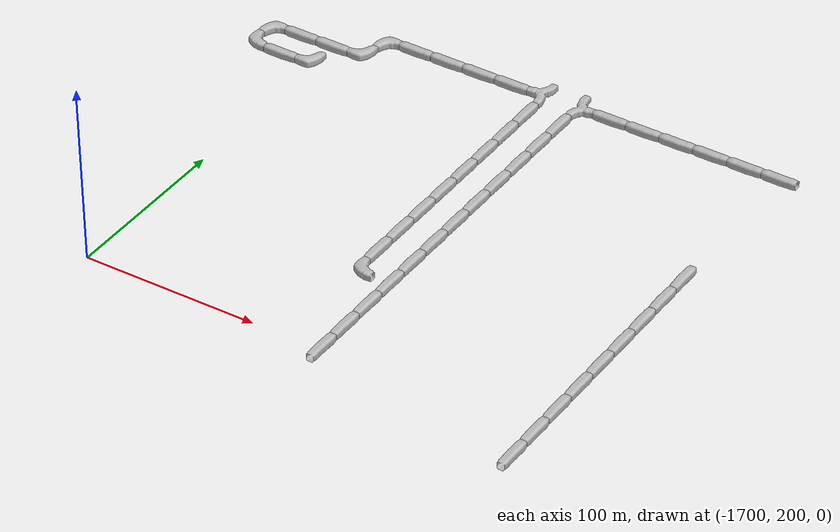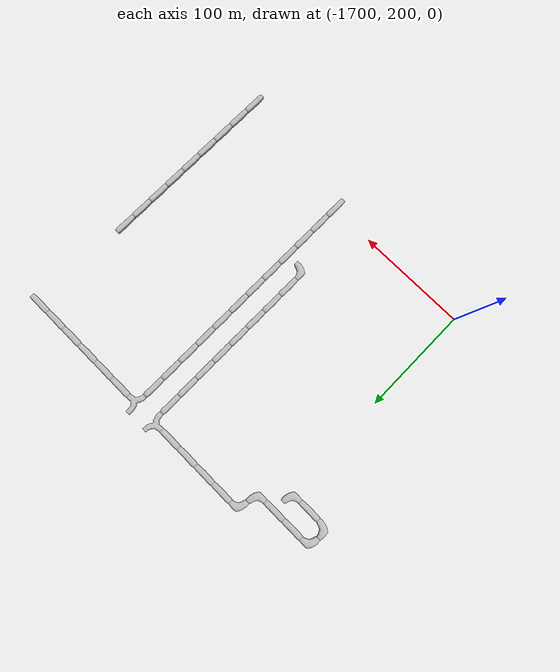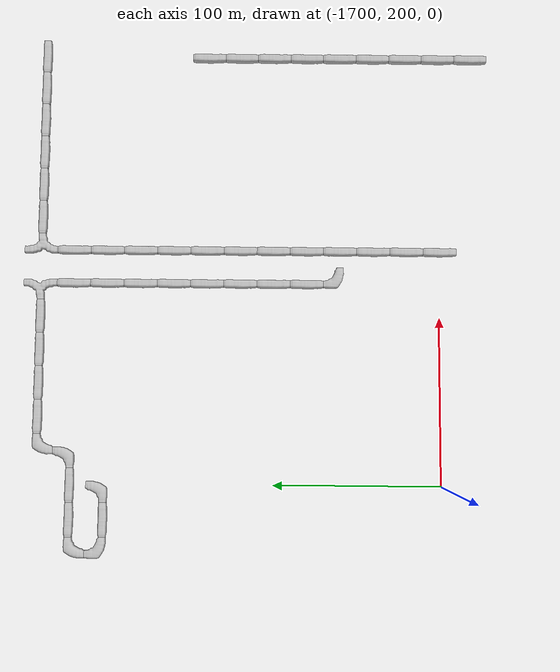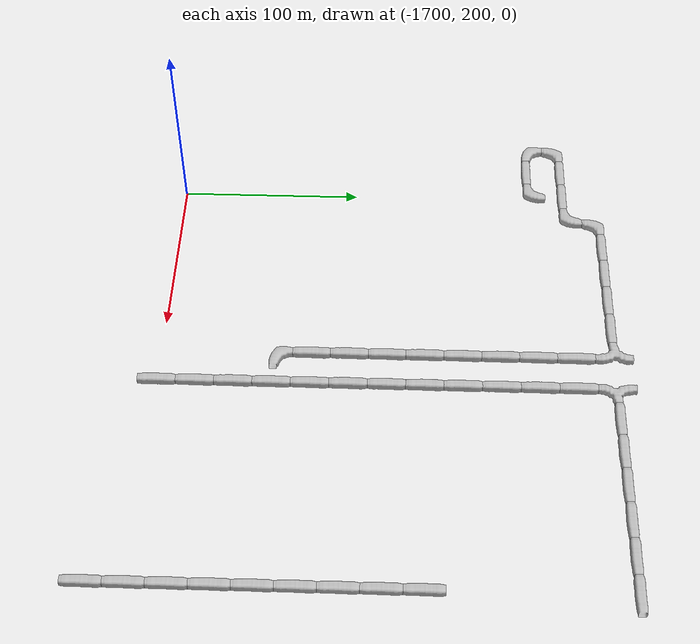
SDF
<sdf version="1.6">
 <world name="cave_16000_2">
  <include>
   <static>true</static>
   <name>cave_-72_9</name>
   <pose>-1440 180 0 0 0 0.0</pose>
   <uri>model://cave_straight_20m</uri>
  </include>
  <include>
   <static>true</static>
   <name>cave_-72_10</name>
   <pose>-1440 200 0 0 0 0.0</pose>
   <uri>model://cave_straight_20m</uri>
  </include>
  <include>
   <static>true</static>
   <name>cave_-72_11</name>
   <pose>-1440 220 0 0 0 0.0</pose>
   <uri>model://cave_straight_20m</uri>
  </include>
  <include>
   <static>true</static>
   <name>cave_-72_12</name>
   <pose>-1440 240 0 0 0 0.0</pose>
   <uri>model://cave_straight_20m</uri>
  </include>
  <include>
   <static>true</static>
   <name>cave_-72_13</name>
   <pose>-1440 260 0 0 0 0.0</pose>
   <uri>model://cave_straight_20m</uri>
  </include>
  <include>
   <static>true</static>
   <name>cave_-72_14</name>
   <pose>-1440 280 0 0 0 0.0</pose>
   <uri>model://cave_straight_20m</uri>
  </include>
  <include>
   <static>true</static>
   <name>cave_-72_15</name>
   <pose>-1440 300 0 0 0 0.0</pose>
   <uri>model://cave_straight_20m</uri>
  </include>
  <include>
   <static>true</static>
   <name>cave_-72_16</name>
   <pose>-1440 320 0 0 0 0.0</pose>
   <uri>model://cave_straight_20m</uri>
  </include>
  <include>
   <static>true</static>
   <name>cave_-72_17</name>
   <pose>-1440 340 0 0 0 0.0</pose>
   <uri>model://cave_straight_20m</uri>
  </include>
  <include>
   <static>true</static>
   <name>cave_-72_22</name>
   <pose>-1440 440 0 0 0 1.5707963267948966</pose>
   <uri>model://cave_straight_20m</uri>
  </include>
  <include>
   <static>true</static>
   <name>cave_-73_22</name>
   <pose>-1460 440 0 0 0 1.5707963267948966</pose>
   <uri>model://cave_straight_20m</uri>
  </include>
  <include>
   <static>true</static>
   <name>cave_-74_22</name>
   <pose>-1480 440 0 0 0 1.5707963267948966</pose>
   <uri>model://cave_straight_20m</uri>
  </include>
  <include>
   <static>true</static>
   <name>cave_-75_22</name>
   <pose>-1500 440 0 0 0 1.5707963267948966</pose>
   <uri>model://cave_straight_20m</uri>
  </include>
  <include>
   <static>true</static>
   <name>cave_-76_22</name>
   <pose>-1520 440 0 0 0 1.5707963267948966</pose>
   <uri>model://cave_straight_20m</uri>
  </include>
  <include>
   <static>true</static>
   <name>cave_-77_22</name>
   <pose>-1540 440 0 0 0 1.5707963267948966</pose>
   <uri>model://cave_straight_20m</uri>
  </include>
  <include>
   <static>true</static>
   <name>cave_-78_22</name>
   <pose>-1560 440 0 0 0 -1.5707963267948966</pose>
   <uri>model://cave_3way_20m</uri>
  </include>
  <include>
   <static>true</static>
   <name>cave_-78_21</name>
   <pose>-1560 420 0 0 0 0.0</pose>
   <uri>model://cave_straight_20m</uri>
  </include>
  <include>
   <static>true</static>
   <name>cave_-78_20</name>
   <pose>-1560 400 0 0 0 0.0</pose>
   <uri>model://cave_straight_20m</uri>
  </include>
  <include>
   <static>true</static>
   <name>cave_-78_19</name>
   <pose>-1560 380 0 0 0 0.0</pose>
   <uri>model://cave_straight_20m</uri>
  </include>
  <include>
   <static>true</static>
   <name>cave_-78_18</name>
   <pose>-1560 360 0 0 0 0.0</pose>
   <uri>model://cave_straight_20m</uri>
  </include>
  <include>
   <static>true</static>
   <name>cave_-78_17</name>
   <pose>-1560 340 0 0 0 0.0</pose>
   <uri>model://cave_straight_20m</uri>
  </include>
  <include>
   <static>true</static>
   <name>cave_-78_16</name>
   <pose>-1560 320 0 0 0 0.0</pose>
   <uri>model://cave_straight_20m</uri>
  </include>
  <include>
   <static>true</static>
   <name>cave_-78_15</name>
   <pose>-1560 300 0 0 0 0.0</pose>
   <uri>model://cave_straight_20m</uri>
  </include>
  <include>
   <static>true</static>
   <name>cave_-78_14</name>
   <pose>-1560 280 0 0 0 0.0</pose>
   <uri>model://cave_straight_20m</uri>
  </include>
  <include>
   <static>true</static>
   <name>cave_-78_13</name>
   <pose>-1560 260 0 0 0 0.0</pose>
   <uri>model://cave_straight_20m</uri>
  </include>
  <include>
   <static>true</static>
   <name>cave_-78_12</name>
   <pose>-1560 240 0 0 0 0.0</pose>
   <uri>model://cave_straight_20m</uri>
  </include>
  <include>
   <static>true</static>
   <name>cave_-78_11</name>
   <pose>-1560 220 0 0 0 0.0</pose>
   <uri>model://cave_straight_20m</uri>
  </include>
  <include>
   <static>true</static>
   <name>cave_-78_10</name>
   <pose>-1560 200 0 0 0 0.0</pose>
   <uri>model://cave_straight_20m</uri>
  </include>
  <include>
   <static>true</static>
   <name>cave_-79_22</name>
   <pose>-1580 440 0 0 0 1.5707963267948966</pose>
   <uri>model://cave_3way_20m</uri>
  </include>
  <include>
   <static>true</static>
   <name>cave_-79_21</name>
   <pose>-1580 420 0 0 0 0.0</pose>
   <uri>model://cave_straight_20m</uri>
  </include>
  <include>
   <static>true</static>
   <name>cave_-79_20</name>
   <pose>-1580 400 0 0 0 0.0</pose>
   <uri>model://cave_straight_20m</uri>
  </include>
  <include>
   <static>true</static>
   <name>cave_-79_19</name>
   <pose>-1580 380 0 0 0 0.0</pose>
   <uri>model://cave_straight_20m</uri>
  </include>
  <include>
   <static>true</static>
   <name>cave_-79_18</name>
   <pose>-1580 360 0 0 0 0.0</pose>
   <uri>model://cave_straight_20m</uri>
  </include>
  <include>
   <static>true</static>
   <name>cave_-79_17</name>
   <pose>-1580 340 0 0 0 0.0</pose>
   <uri>model://cave_straight_20m</uri>
  </include>
  <include>
   <static>true</static>
   <name>cave_-79_16</name>
   <pose>-1580 320 0 0 0 0.0</pose>
   <uri>model://cave_straight_20m</uri>
  </include>
  <include>
   <static>true</static>
   <name>cave_-79_15</name>
   <pose>-1580 300 0 0 0 0.0</pose>
   <uri>model://cave_straight_20m</uri>
  </include>
  <include>
   <static>true</static>
   <name>cave_-79_14</name>
   <pose>-1580 280 0 0 0 0.0</pose>
   <uri>model://cave_straight_20m</uri>
  </include>
  <include>
   <static>true</static>
   <name>cave_-79_13</name>
   <pose>-1580 260 0 0 0 0.0</pose>
   <uri>model://cave_L_20m</uri>
  </include>
  <include>
   <static>true</static>
   <name>cave_-80_22</name>
   <pose>-1600 440 0 0 0 1.5707963267948966</pose>
   <uri>model://cave_straight_20m</uri>
  </include>
  <include>
   <static>true</static>
   <name>cave_-81_22</name>
   <pose>-1620 440 0 0 0 1.5707963267948966</pose>
   <uri>model://cave_straight_20m</uri>
  </include>
  <include>
   <static>true</static>
   <name>cave_-82_22</name>
   <pose>-1640 440 0 0 0 1.5707963267948966</pose>
   <uri>model://cave_straight_20m</uri>
  </include>
  <include>
   <static>true</static>
   <name>cave_-83_22</name>
   <pose>-1660 440 0 0 0 1.5707963267948966</pose>
   <uri>model://cave_straight_20m</uri>
  </include>
  <include>
   <static>true</static>
   <name>cave_-84_22</name>
   <pose>-1680 440 0 0 0 -1.5707963267948966</pose>
   <uri>model://cave_L_20m</uri>
  </include>
  <include>
   <static>true</static>
   <name>cave_-84_21</name>
   <pose>-1680 420 0 0 0 1.5707963267948966</pose>
   <uri>model://cave_L_20m</uri>
  </include>
  <include>
   <static>true</static>
   <name>cave_-85_21</name>
   <pose>-1700 420 0 0 0 1.5707963267948966</pose>
   <uri>model://cave_straight_20m</uri>
  </include>
  <include>
   <static>true</static>
   <name>cave_-86_21</name>
   <pose>-1720 420 0 0 0 1.5707963267948966</pose>
   <uri>model://cave_straight_20m</uri>
  </include>
  <include>
   <static>true</static>
   <name>cave_-87_21</name>
   <pose>-1740 420 0 0 0 -1.5707963267948966</pose>
   <uri>model://cave_L_20m</uri>
  </include>
  <include>
   <static>true</static>
   <name>cave_-87_20</name>
   <pose>-1740 400 0 0 0 0.0</pose>
   <uri>model://cave_L_20m</uri>
  </include>
  <include>
   <static>true</static>
   <name>cave_-86_20</name>
   <pose>-1720 400 0 0 0 1.5707963267948966</pose>
   <uri>model://cave_straight_20m</uri>
  </include>
  <include>
   <static>true</static>
   <name>cave_-85_20</name>
   <pose>-1700 400 0 0 0 1.5707963267948966</pose>
   <uri>model://cave_L_20m</uri>
  </include>
 </world>
</sdf>
